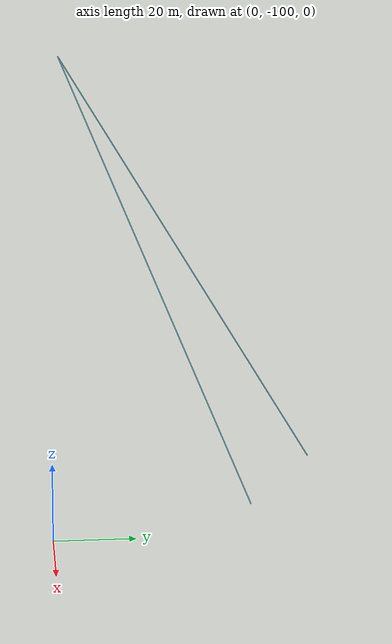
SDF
<?xml version="1.0" ?>
<sdf version="1.9">
  <model name="beam_C"><static>true</static><link name="l"><visual name="leg0"><pose>-43.200 -73.100 51.614 0 0.6735 -2.5385</pose><geometry><cylinder><radius>0.12</radius><length>123.807</length></cylinder></geometry><material><ambient>0.3 0.85 1 1</ambient><diffuse>0.3 0.85 1 1</diffuse><specular>0.1 0.1 0.1 1</specular><emissive>0.3 0.85 1 1</emissive></material><transparency>0.35</transparency><cast_shadows>false</cast_shadows></visual><visual name="leg1"><pose>-57.750 -64.500 51.614 0 2.5148 1.0561</pose><geometry><cylinder><radius>0.12</radius><length>119.483</length></cylinder></geometry><material><ambient>0.3 0.85 1 1</ambient><diffuse>0.3 0.85 1 1</diffuse><specular>0.1 0.1 0.1 1</specular><emissive>0.3 0.85 1 1</emissive></material><transparency>0.35</transparency><cast_shadows>false</cast_shadows></visual></link></model>
</sdf>
